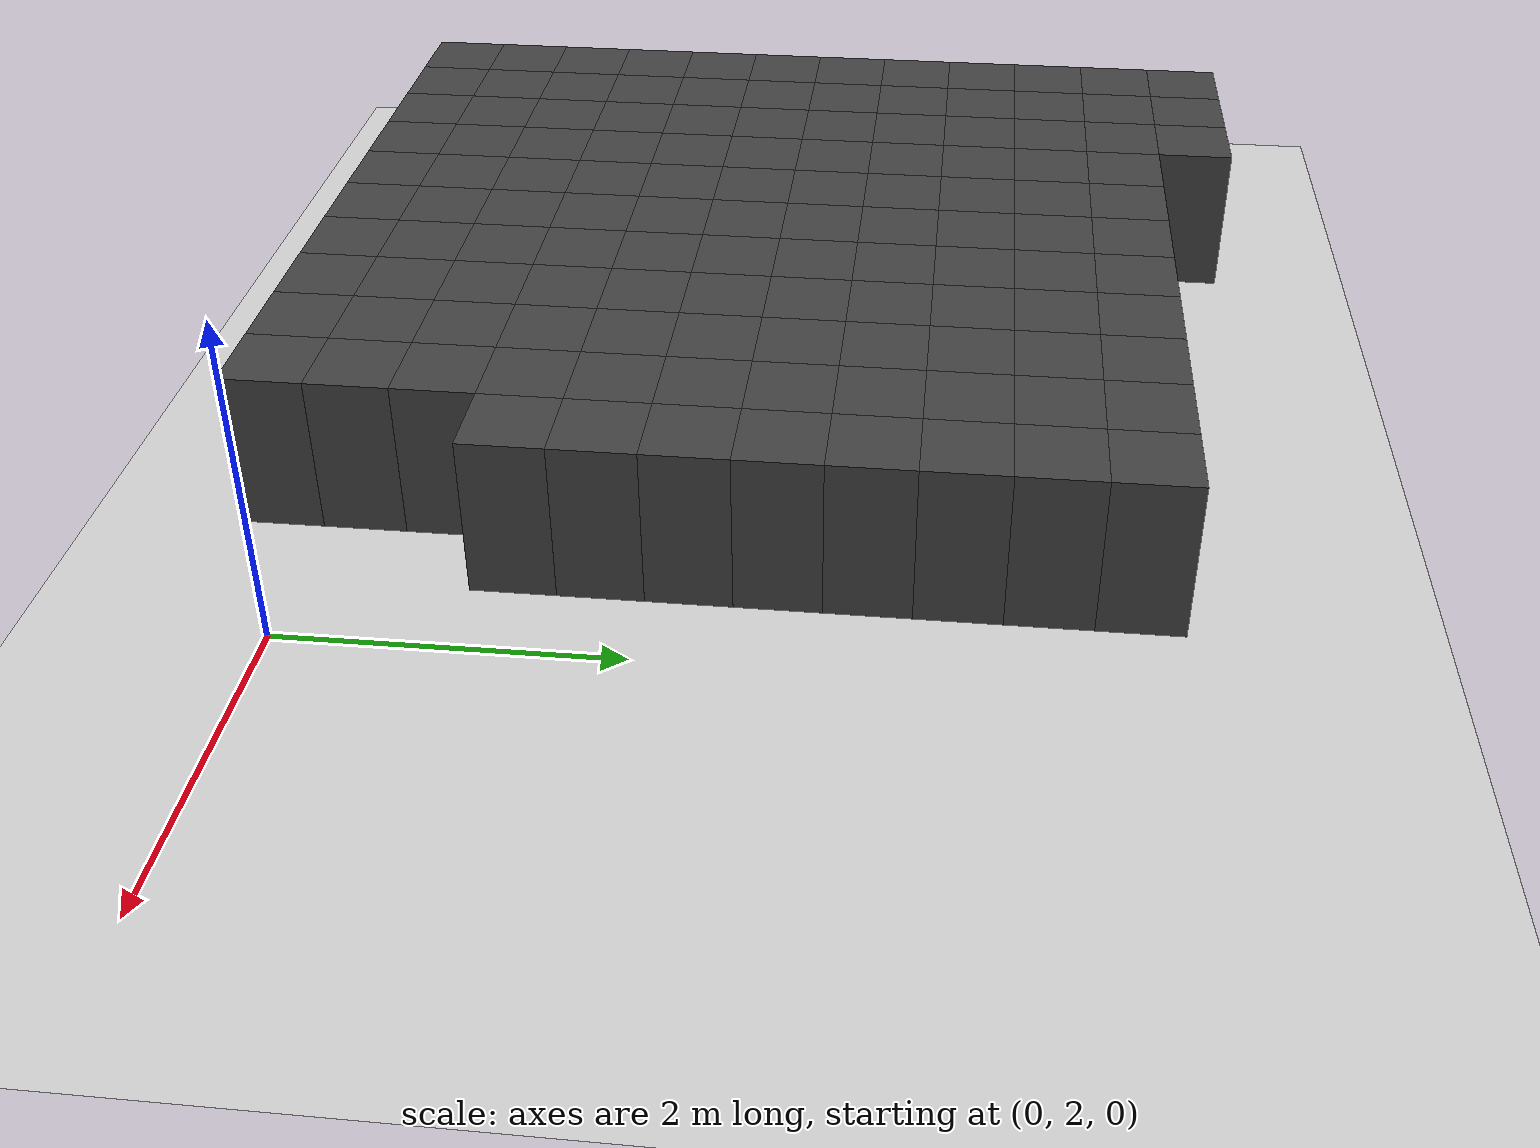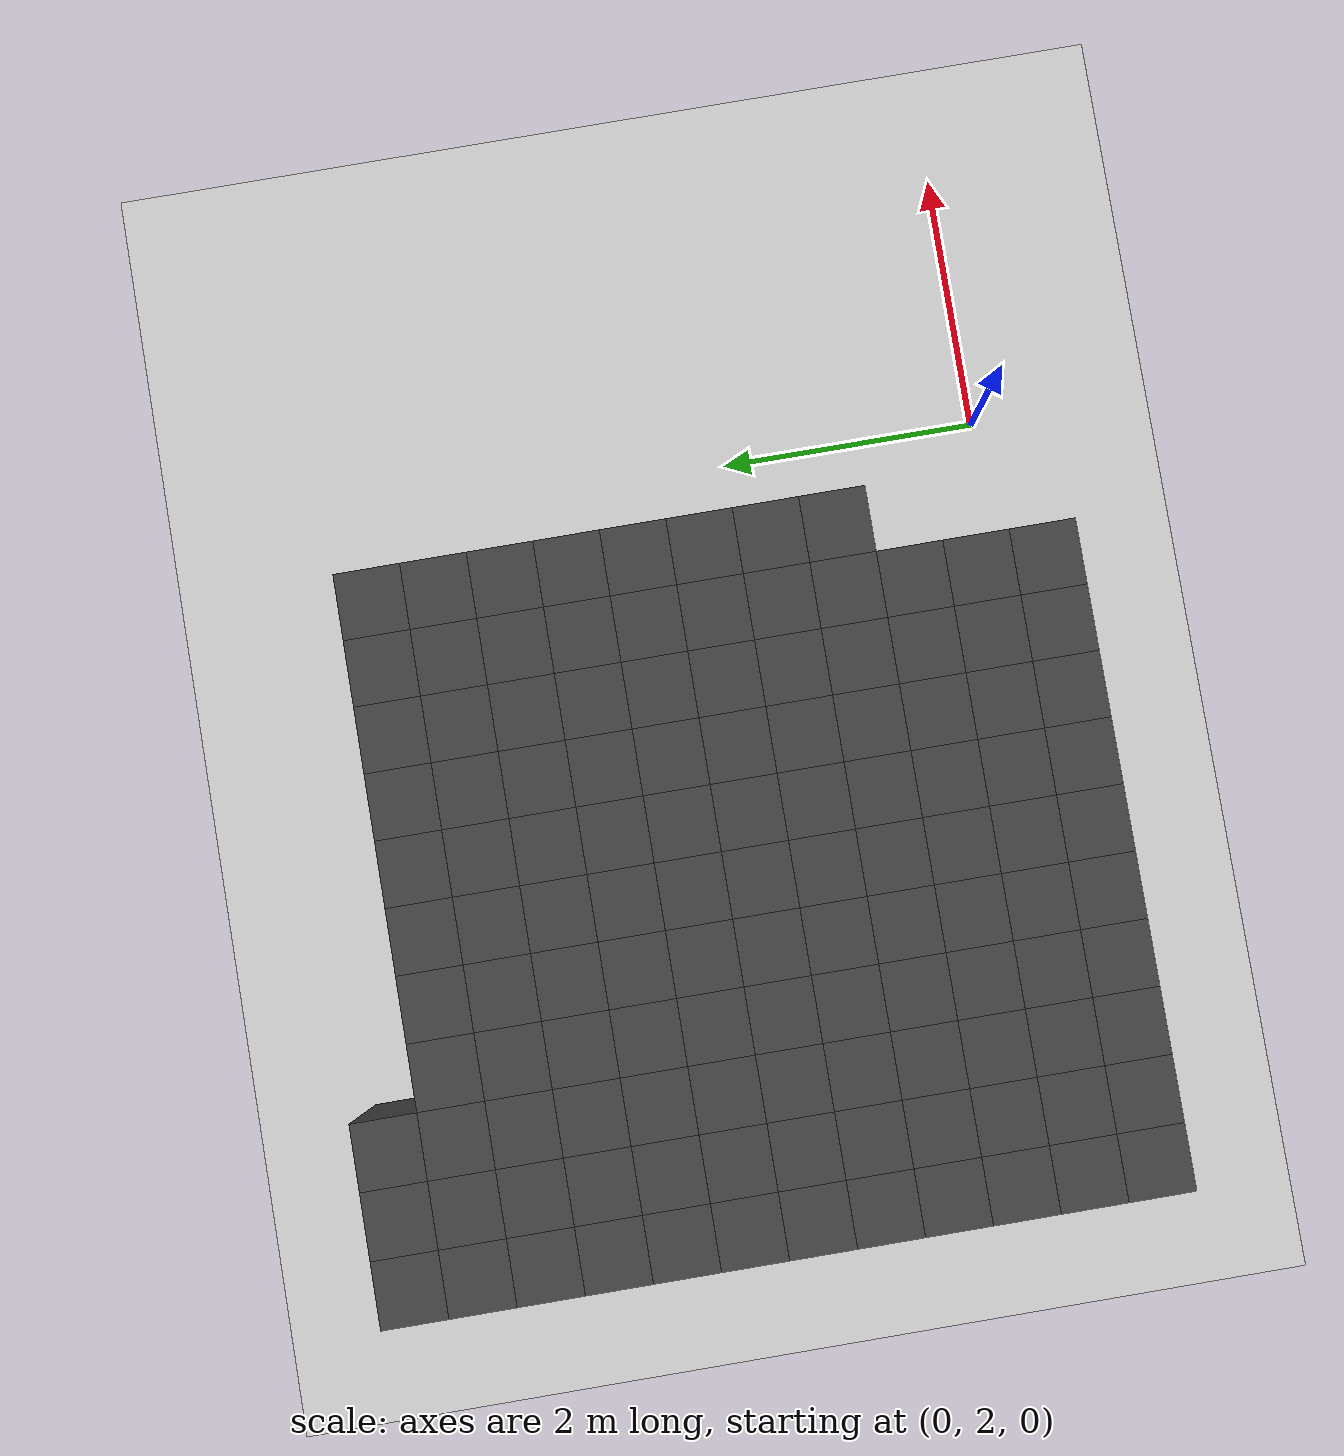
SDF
<sdf version="1.7">
 <world name="map_12885">
  <model name="ground_plane">
   <static>true</static>
   <link name="link">
    <collision name="collision">
     <geometry><plane><normal>0 0 1</normal><size>200 200</size></plane></geometry>
    </collision>
    <visual name="visual">
     <geometry><plane><normal>0 0 1</normal><size>200 200</size></plane></geometry>
     <material><ambient>0.8 0.8 0.8 1</ambient><diffuse>0.8 0.8 0.8 1</diffuse></material>
    </visual>
   </link>
  </model>
  <model name="maze_environment">
   <static>true</static>
   <link name="wall_480">
    <pose>-5.750 7.250 0.500 0 0 0</pose>
    <collision name="col"><geometry><box><size>0.5 0.5 1.0</size></box></geometry></collision>
    <visual name="vis">
     <geometry><box><size>0.5 0.5 1.0</size></box></geometry>
     <material><ambient>0.15 0.15 0.15 1</ambient><diffuse>0.25 0.25 0.25 1</diffuse></material>
    </visual>
   </link>
   <link name="wall_481">
    <pose>-5.250 7.250 0.500 0 0 0</pose>
    <collision name="col"><geometry><box><size>0.5 0.5 1.0</size></box></geometry></collision>
    <visual name="vis">
     <geometry><box><size>0.5 0.5 1.0</size></box></geometry>
     <material><ambient>0.15 0.15 0.15 1</ambient><diffuse>0.25 0.25 0.25 1</diffuse></material>
    </visual>
   </link>
   <link name="wall_482">
    <pose>-4.750 7.250 0.500 0 0 0</pose>
    <collision name="col"><geometry><box><size>0.5 0.5 1.0</size></box></geometry></collision>
    <visual name="vis">
     <geometry><box><size>0.5 0.5 1.0</size></box></geometry>
     <material><ambient>0.15 0.15 0.15 1</ambient><diffuse>0.25 0.25 0.25 1</diffuse></material>
    </visual>
   </link>
   <link name="wall_516">
    <pose>-5.750 6.750 0.500 0 0 0</pose>
    <collision name="col"><geometry><box><size>0.5 0.5 1.0</size></box></geometry></collision>
    <visual name="vis">
     <geometry><box><size>0.5 0.5 1.0</size></box></geometry>
     <material><ambient>0.15 0.15 0.15 1</ambient><diffuse>0.25 0.25 0.25 1</diffuse></material>
    </visual>
   </link>
   <link name="wall_517">
    <pose>-5.250 6.750 0.500 0 0 0</pose>
    <collision name="col"><geometry><box><size>0.5 0.5 1.0</size></box></geometry></collision>
    <visual name="vis">
     <geometry><box><size>0.5 0.5 1.0</size></box></geometry>
     <material><ambient>0.15 0.15 0.15 1</ambient><diffuse>0.25 0.25 0.25 1</diffuse></material>
    </visual>
   </link>
   <link name="wall_518">
    <pose>-4.750 6.750 0.500 0 0 0</pose>
    <collision name="col"><geometry><box><size>0.5 0.5 1.0</size></box></geometry></collision>
    <visual name="vis">
     <geometry><box><size>0.5 0.5 1.0</size></box></geometry>
     <material><ambient>0.15 0.15 0.15 1</ambient><diffuse>0.25 0.25 0.25 1</diffuse></material>
    </visual>
   </link>
   <link name="wall_519">
    <pose>-4.250 6.750 0.500 0 0 0</pose>
    <collision name="col"><geometry><box><size>0.5 0.5 1.0</size></box></geometry></collision>
    <visual name="vis">
     <geometry><box><size>0.5 0.5 1.0</size></box></geometry>
     <material><ambient>0.15 0.15 0.15 1</ambient><diffuse>0.25 0.25 0.25 1</diffuse></material>
    </visual>
   </link>
   <link name="wall_520">
    <pose>-3.750 6.750 0.500 0 0 0</pose>
    <collision name="col"><geometry><box><size>0.5 0.5 1.0</size></box></geometry></collision>
    <visual name="vis">
     <geometry><box><size>0.5 0.5 1.0</size></box></geometry>
     <material><ambient>0.15 0.15 0.15 1</ambient><diffuse>0.25 0.25 0.25 1</diffuse></material>
    </visual>
   </link>
   <link name="wall_521">
    <pose>-3.250 6.750 0.500 0 0 0</pose>
    <collision name="col"><geometry><box><size>0.5 0.5 1.0</size></box></geometry></collision>
    <visual name="vis">
     <geometry><box><size>0.5 0.5 1.0</size></box></geometry>
     <material><ambient>0.15 0.15 0.15 1</ambient><diffuse>0.25 0.25 0.25 1</diffuse></material>
    </visual>
   </link>
   <link name="wall_522">
    <pose>-2.750 6.750 0.500 0 0 0</pose>
    <collision name="col"><geometry><box><size>0.5 0.5 1.0</size></box></geometry></collision>
    <visual name="vis">
     <geometry><box><size>0.5 0.5 1.0</size></box></geometry>
     <material><ambient>0.15 0.15 0.15 1</ambient><diffuse>0.25 0.25 0.25 1</diffuse></material>
    </visual>
   </link>
   <link name="wall_523">
    <pose>-2.250 6.750 0.500 0 0 0</pose>
    <collision name="col"><geometry><box><size>0.5 0.5 1.0</size></box></geometry></collision>
    <visual name="vis">
     <geometry><box><size>0.5 0.5 1.0</size></box></geometry>
     <material><ambient>0.15 0.15 0.15 1</ambient><diffuse>0.25 0.25 0.25 1</diffuse></material>
    </visual>
   </link>
   <link name="wall_524">
    <pose>-1.750 6.750 0.500 0 0 0</pose>
    <collision name="col"><geometry><box><size>0.5 0.5 1.0</size></box></geometry></collision>
    <visual name="vis">
     <geometry><box><size>0.5 0.5 1.0</size></box></geometry>
     <material><ambient>0.15 0.15 0.15 1</ambient><diffuse>0.25 0.25 0.25 1</diffuse></material>
    </visual>
   </link>
   <link name="wall_525">
    <pose>-1.250 6.750 0.500 0 0 0</pose>
    <collision name="col"><geometry><box><size>0.5 0.5 1.0</size></box></geometry></collision>
    <visual name="vis">
     <geometry><box><size>0.5 0.5 1.0</size></box></geometry>
     <material><ambient>0.15 0.15 0.15 1</ambient><diffuse>0.25 0.25 0.25 1</diffuse></material>
    </visual>
   </link>
   <link name="wall_526">
    <pose>-0.750 6.750 0.500 0 0 0</pose>
    <collision name="col"><geometry><box><size>0.5 0.5 1.0</size></box></geometry></collision>
    <visual name="vis">
     <geometry><box><size>0.5 0.5 1.0</size></box></geometry>
     <material><ambient>0.15 0.15 0.15 1</ambient><diffuse>0.25 0.25 0.25 1</diffuse></material>
    </visual>
   </link>
   <link name="wall_550">
    <pose>-5.750 6.250 0.500 0 0 0</pose>
    <collision name="col"><geometry><box><size>0.5 0.5 1.0</size></box></geometry></collision>
    <visual name="vis">
     <geometry><box><size>0.5 0.5 1.0</size></box></geometry>
     <material><ambient>0.15 0.15 0.15 1</ambient><diffuse>0.25 0.25 0.25 1</diffuse></material>
    </visual>
   </link>
   <link name="wall_551">
    <pose>-5.250 6.250 0.500 0 0 0</pose>
    <collision name="col"><geometry><box><size>0.5 0.5 1.0</size></box></geometry></collision>
    <visual name="vis">
     <geometry><box><size>0.5 0.5 1.0</size></box></geometry>
     <material><ambient>0.15 0.15 0.15 1</ambient><diffuse>0.25 0.25 0.25 1</diffuse></material>
    </visual>
   </link>
   <link name="wall_552">
    <pose>-4.750 6.250 0.500 0 0 0</pose>
    <collision name="col"><geometry><box><size>0.5 0.5 1.0</size></box></geometry></collision>
    <visual name="vis">
     <geometry><box><size>0.5 0.5 1.0</size></box></geometry>
     <material><ambient>0.15 0.15 0.15 1</ambient><diffuse>0.25 0.25 0.25 1</diffuse></material>
    </visual>
   </link>
   <link name="wall_553">
    <pose>-4.250 6.250 0.500 0 0 0</pose>
    <collision name="col"><geometry><box><size>0.5 0.5 1.0</size></box></geometry></collision>
    <visual name="vis">
     <geometry><box><size>0.5 0.5 1.0</size></box></geometry>
     <material><ambient>0.15 0.15 0.15 1</ambient><diffuse>0.25 0.25 0.25 1</diffuse></material>
    </visual>
   </link>
   <link name="wall_554">
    <pose>-3.750 6.250 0.500 0 0 0</pose>
    <collision name="col"><geometry><box><size>0.5 0.5 1.0</size></box></geometry></collision>
    <visual name="vis">
     <geometry><box><size>0.5 0.5 1.0</size></box></geometry>
     <material><ambient>0.15 0.15 0.15 1</ambient><diffuse>0.25 0.25 0.25 1</diffuse></material>
    </visual>
   </link>
   <link name="wall_555">
    <pose>-3.250 6.250 0.500 0 0 0</pose>
    <collision name="col"><geometry><box><size>0.5 0.5 1.0</size></box></geometry></collision>
    <visual name="vis">
     <geometry><box><size>0.5 0.5 1.0</size></box></geometry>
     <material><ambient>0.15 0.15 0.15 1</ambient><diffuse>0.25 0.25 0.25 1</diffuse></material>
    </visual>
   </link>
   <link name="wall_556">
    <pose>-2.750 6.250 0.500 0 0 0</pose>
    <collision name="col"><geometry><box><size>0.5 0.5 1.0</size></box></geometry></collision>
    <visual name="vis">
     <geometry><box><size>0.5 0.5 1.0</size></box></geometry>
     <material><ambient>0.15 0.15 0.15 1</ambient><diffuse>0.25 0.25 0.25 1</diffuse></material>
    </visual>
   </link>
   <link name="wall_557">
    <pose>-2.250 6.250 0.500 0 0 0</pose>
    <collision name="col"><geometry><box><size>0.5 0.5 1.0</size></box></geometry></collision>
    <visual name="vis">
     <geometry><box><size>0.5 0.5 1.0</size></box></geometry>
     <material><ambient>0.15 0.15 0.15 1</ambient><diffuse>0.25 0.25 0.25 1</diffuse></material>
    </visual>
   </link>
   <link name="wall_558">
    <pose>-1.750 6.250 0.500 0 0 0</pose>
    <collision name="col"><geometry><box><size>0.5 0.5 1.0</size></box></geometry></collision>
    <visual name="vis">
     <geometry><box><size>0.5 0.5 1.0</size></box></geometry>
     <material><ambient>0.15 0.15 0.15 1</ambient><diffuse>0.25 0.25 0.25 1</diffuse></material>
    </visual>
   </link>
   <link name="wall_559">
    <pose>-1.250 6.250 0.500 0 0 0</pose>
    <collision name="col"><geometry><box><size>0.5 0.5 1.0</size></box></geometry></collision>
    <visual name="vis">
     <geometry><box><size>0.5 0.5 1.0</size></box></geometry>
     <material><ambient>0.15 0.15 0.15 1</ambient><diffuse>0.25 0.25 0.25 1</diffuse></material>
    </visual>
   </link>
   <link name="wall_560">
    <pose>-0.750 6.250 0.500 0 0 0</pose>
    <collision name="col"><geometry><box><size>0.5 0.5 1.0</size></box></geometry></collision>
    <visual name="vis">
     <geometry><box><size>0.5 0.5 1.0</size></box></geometry>
     <material><ambient>0.15 0.15 0.15 1</ambient><diffuse>0.25 0.25 0.25 1</diffuse></material>
    </visual>
   </link>
   <link name="wall_582">
    <pose>-5.750 5.750 0.500 0 0 0</pose>
    <collision name="col"><geometry><box><size>0.5 0.5 1.0</size></box></geometry></collision>
    <visual name="vis">
     <geometry><box><size>0.5 0.5 1.0</size></box></geometry>
     <material><ambient>0.15 0.15 0.15 1</ambient><diffuse>0.25 0.25 0.25 1</diffuse></material>
    </visual>
   </link>
   <link name="wall_583">
    <pose>-5.250 5.750 0.500 0 0 0</pose>
    <collision name="col"><geometry><box><size>0.5 0.5 1.0</size></box></geometry></collision>
    <visual name="vis">
     <geometry><box><size>0.5 0.5 1.0</size></box></geometry>
     <material><ambient>0.15 0.15 0.15 1</ambient><diffuse>0.25 0.25 0.25 1</diffuse></material>
    </visual>
   </link>
   <link name="wall_584">
    <pose>-4.750 5.750 0.500 0 0 0</pose>
    <collision name="col"><geometry><box><size>0.5 0.5 1.0</size></box></geometry></collision>
    <visual name="vis">
     <geometry><box><size>0.5 0.5 1.0</size></box></geometry>
     <material><ambient>0.15 0.15 0.15 1</ambient><diffuse>0.25 0.25 0.25 1</diffuse></material>
    </visual>
   </link>
   <link name="wall_585">
    <pose>-4.250 5.750 0.500 0 0 0</pose>
    <collision name="col"><geometry><box><size>0.5 0.5 1.0</size></box></geometry></collision>
    <visual name="vis">
     <geometry><box><size>0.5 0.5 1.0</size></box></geometry>
     <material><ambient>0.15 0.15 0.15 1</ambient><diffuse>0.25 0.25 0.25 1</diffuse></material>
    </visual>
   </link>
   <link name="wall_586">
    <pose>-3.750 5.750 0.500 0 0 0</pose>
    <collision name="col"><geometry><box><size>0.5 0.5 1.0</size></box></geometry></collision>
    <visual name="vis">
     <geometry><box><size>0.5 0.5 1.0</size></box></geometry>
     <material><ambient>0.15 0.15 0.15 1</ambient><diffuse>0.25 0.25 0.25 1</diffuse></material>
    </visual>
   </link>
   <link name="wall_587">
    <pose>-3.250 5.750 0.500 0 0 0</pose>
    <collision name="col"><geometry><box><size>0.5 0.5 1.0</size></box></geometry></collision>
    <visual name="vis">
     <geometry><box><size>0.5 0.5 1.0</size></box></geometry>
     <material><ambient>0.15 0.15 0.15 1</ambient><diffuse>0.25 0.25 0.25 1</diffuse></material>
    </visual>
   </link>
   <link name="wall_588">
    <pose>-2.750 5.750 0.500 0 0 0</pose>
    <collision name="col"><geometry><box><size>0.5 0.5 1.0</size></box></geometry></collision>
    <visual name="vis">
     <geometry><box><size>0.5 0.5 1.0</size></box></geometry>
     <material><ambient>0.15 0.15 0.15 1</ambient><diffuse>0.25 0.25 0.25 1</diffuse></material>
    </visual>
   </link>
   <link name="wall_589">
    <pose>-2.250 5.750 0.500 0 0 0</pose>
    <collision name="col"><geometry><box><size>0.5 0.5 1.0</size></box></geometry></collision>
    <visual name="vis">
     <geometry><box><size>0.5 0.5 1.0</size></box></geometry>
     <material><ambient>0.15 0.15 0.15 1</ambient><diffuse>0.25 0.25 0.25 1</diffuse></material>
    </visual>
   </link>
   <link name="wall_590">
    <pose>-1.750 5.750 0.500 0 0 0</pose>
    <collision name="col"><geometry><box><size>0.5 0.5 1.0</size></box></geometry></collision>
    <visual name="vis">
     <geometry><box><size>0.5 0.5 1.0</size></box></geometry>
     <material><ambient>0.15 0.15 0.15 1</ambient><diffuse>0.25 0.25 0.25 1</diffuse></material>
    </visual>
   </link>
   <link name="wall_591">
    <pose>-1.250 5.750 0.500 0 0 0</pose>
    <collision name="col"><geometry><box><size>0.5 0.5 1.0</size></box></geometry></collision>
    <visual name="vis">
     <geometry><box><size>0.5 0.5 1.0</size></box></geometry>
     <material><ambient>0.15 0.15 0.15 1</ambient><diffuse>0.25 0.25 0.25 1</diffuse></material>
    </visual>
   </link>
   <link name="wall_592">
    <pose>-0.750 5.750 0.500 0 0 0</pose>
    <collision name="col"><geometry><box><size>0.5 0.5 1.0</size></box></geometry></collision>
    <visual name="vis">
     <geometry><box><size>0.5 0.5 1.0</size></box></geometry>
     <material><ambient>0.15 0.15 0.15 1</ambient><diffuse>0.25 0.25 0.25 1</diffuse></material>
    </visual>
   </link>
   <link name="wall_614">
    <pose>-5.750 5.250 0.500 0 0 0</pose>
    <collision name="col"><geometry><box><size>0.5 0.5 1.0</size></box></geometry></collision>
    <visual name="vis">
     <geometry><box><size>0.5 0.5 1.0</size></box></geometry>
     <material><ambient>0.15 0.15 0.15 1</ambient><diffuse>0.25 0.25 0.25 1</diffuse></material>
    </visual>
   </link>
   <link name="wall_615">
    <pose>-5.250 5.250 0.500 0 0 0</pose>
    <collision name="col"><geometry><box><size>0.5 0.5 1.0</size></box></geometry></collision>
    <visual name="vis">
     <geometry><box><size>0.5 0.5 1.0</size></box></geometry>
     <material><ambient>0.15 0.15 0.15 1</ambient><diffuse>0.25 0.25 0.25 1</diffuse></material>
    </visual>
   </link>
   <link name="wall_616">
    <pose>-4.750 5.250 0.500 0 0 0</pose>
    <collision name="col"><geometry><box><size>0.5 0.5 1.0</size></box></geometry></collision>
    <visual name="vis">
     <geometry><box><size>0.5 0.5 1.0</size></box></geometry>
     <material><ambient>0.15 0.15 0.15 1</ambient><diffuse>0.25 0.25 0.25 1</diffuse></material>
    </visual>
   </link>
   <link name="wall_617">
    <pose>-4.250 5.250 0.500 0 0 0</pose>
    <collision name="col"><geometry><box><size>0.5 0.5 1.0</size></box></geometry></collision>
    <visual name="vis">
     <geometry><box><size>0.5 0.5 1.0</size></box></geometry>
     <material><ambient>0.15 0.15 0.15 1</ambient><diffuse>0.25 0.25 0.25 1</diffuse></material>
    </visual>
   </link>
   <link name="wall_618">
    <pose>-3.750 5.250 0.500 0 0 0</pose>
    <collision name="col"><geometry><box><size>0.5 0.5 1.0</size></box></geometry></collision>
    <visual name="vis">
     <geometry><box><size>0.5 0.5 1.0</size></box></geometry>
     <material><ambient>0.15 0.15 0.15 1</ambient><diffuse>0.25 0.25 0.25 1</diffuse></material>
    </visual>
   </link>
   <link name="wall_619">
    <pose>-3.250 5.250 0.500 0 0 0</pose>
    <collision name="col"><geometry><box><size>0.5 0.5 1.0</size></box></geometry></collision>
    <visual name="vis">
     <geometry><box><size>0.5 0.5 1.0</size></box></geometry>
     <material><ambient>0.15 0.15 0.15 1</ambient><diffuse>0.25 0.25 0.25 1</diffuse></material>
    </visual>
   </link>
   <link name="wall_620">
    <pose>-2.750 5.250 0.500 0 0 0</pose>
    <collision name="col"><geometry><box><size>0.5 0.5 1.0</size></box></geometry></collision>
    <visual name="vis">
     <geometry><box><size>0.5 0.5 1.0</size></box></geometry>
     <material><ambient>0.15 0.15 0.15 1</ambient><diffuse>0.25 0.25 0.25 1</diffuse></material>
    </visual>
   </link>
   <link name="wall_621">
    <pose>-2.250 5.250 0.500 0 0 0</pose>
    <collision name="col"><geometry><box><size>0.5 0.5 1.0</size></box></geometry></collision>
    <visual name="vis">
     <geometry><box><size>0.5 0.5 1.0</size></box></geometry>
     <material><ambient>0.15 0.15 0.15 1</ambient><diffuse>0.25 0.25 0.25 1</diffuse></material>
    </visual>
   </link>
   <link name="wall_622">
    <pose>-1.750 5.250 0.500 0 0 0</pose>
    <collision name="col"><geometry><box><size>0.5 0.5 1.0</size></box></geometry></collision>
    <visual name="vis">
     <geometry><box><size>0.5 0.5 1.0</size></box></geometry>
     <material><ambient>0.15 0.15 0.15 1</ambient><diffuse>0.25 0.25 0.25 1</diffuse></material>
    </visual>
   </link>
   <link name="wall_623">
    <pose>-1.250 5.250 0.500 0 0 0</pose>
    <collision name="col"><geometry><box><size>0.5 0.5 1.0</size></box></geometry></collision>
    <visual name="vis">
     <geometry><box><size>0.5 0.5 1.0</size></box></geometry>
     <material><ambient>0.15 0.15 0.15 1</ambient><diffuse>0.25 0.25 0.25 1</diffuse></material>
    </visual>
   </link>
   <link name="wall_624">
    <pose>-0.750 5.250 0.500 0 0 0</pose>
    <collision name="col"><geometry><box><size>0.5 0.5 1.0</size></box></geometry></collision>
    <visual name="vis">
     <geometry><box><size>0.5 0.5 1.0</size></box></geometry>
     <material><ambient>0.15 0.15 0.15 1</ambient><diffuse>0.25 0.25 0.25 1</diffuse></material>
    </visual>
   </link>
   <link name="wall_655">
    <pose>-5.750 4.750 0.500 0 0 0</pose>
    <collision name="col"><geometry><box><size>0.5 0.5 1.0</size></box></geometry></collision>
    <visual name="vis">
     <geometry><box><size>0.5 0.5 1.0</size></box></geometry>
     <material><ambient>0.15 0.15 0.15 1</ambient><diffuse>0.25 0.25 0.25 1</diffuse></material>
    </visual>
   </link>
   <link name="wall_656">
    <pose>-5.250 4.750 0.500 0 0 0</pose>
    <collision name="col"><geometry><box><size>0.5 0.5 1.0</size></box></geometry></collision>
    <visual name="vis">
     <geometry><box><size>0.5 0.5 1.0</size></box></geometry>
     <material><ambient>0.15 0.15 0.15 1</ambient><diffuse>0.25 0.25 0.25 1</diffuse></material>
    </visual>
   </link>
   <link name="wall_657">
    <pose>-4.750 4.750 0.500 0 0 0</pose>
    <collision name="col"><geometry><box><size>0.5 0.5 1.0</size></box></geometry></collision>
    <visual name="vis">
     <geometry><box><size>0.5 0.5 1.0</size></box></geometry>
     <material><ambient>0.15 0.15 0.15 1</ambient><diffuse>0.25 0.25 0.25 1</diffuse></material>
    </visual>
   </link>
   <link name="wall_658">
    <pose>-4.250 4.750 0.500 0 0 0</pose>
    <collision name="col"><geometry><box><size>0.5 0.5 1.0</size></box></geometry></collision>
    <visual name="vis">
     <geometry><box><size>0.5 0.5 1.0</size></box></geometry>
     <material><ambient>0.15 0.15 0.15 1</ambient><diffuse>0.25 0.25 0.25 1</diffuse></material>
    </visual>
   </link>
   <link name="wall_659">
    <pose>-3.750 4.750 0.500 0 0 0</pose>
    <collision name="col"><geometry><box><size>0.5 0.5 1.0</size></box></geometry></collision>
    <visual name="vis">
     <geometry><box><size>0.5 0.5 1.0</size></box></geometry>
     <material><ambient>0.15 0.15 0.15 1</ambient><diffuse>0.25 0.25 0.25 1</diffuse></material>
    </visual>
   </link>
   <link name="wall_660">
    <pose>-3.250 4.750 0.500 0 0 0</pose>
    <collision name="col"><geometry><box><size>0.5 0.5 1.0</size></box></geometry></collision>
    <visual name="vis">
     <geometry><box><size>0.5 0.5 1.0</size></box></geometry>
     <material><ambient>0.15 0.15 0.15 1</ambient><diffuse>0.25 0.25 0.25 1</diffuse></material>
    </visual>
   </link>
   <link name="wall_661">
    <pose>-2.750 4.750 0.500 0 0 0</pose>
    <collision name="col"><geometry><box><size>0.5 0.5 1.0</size></box></geometry></collision>
    <visual name="vis">
     <geometry><box><size>0.5 0.5 1.0</size></box></geometry>
     <material><ambient>0.15 0.15 0.15 1</ambient><diffuse>0.25 0.25 0.25 1</diffuse></material>
    </visual>
   </link>
   <link name="wall_662">
    <pose>-2.250 4.750 0.500 0 0 0</pose>
    <collision name="col"><geometry><box><size>0.5 0.5 1.0</size></box></geometry></collision>
    <visual name="vis">
     <geometry><box><size>0.5 0.5 1.0</size></box></geometry>
     <material><ambient>0.15 0.15 0.15 1</ambient><diffuse>0.25 0.25 0.25 1</diffuse></material>
    </visual>
   </link>
   <link name="wall_663">
    <pose>-1.750 4.750 0.500 0 0 0</pose>
    <collision name="col"><geometry><box><size>0.5 0.5 1.0</size></box></geometry></collision>
    <visual name="vis">
     <geometry><box><size>0.5 0.5 1.0</size></box></geometry>
     <material><ambient>0.15 0.15 0.15 1</ambient><diffuse>0.25 0.25 0.25 1</diffuse></material>
    </visual>
   </link>
   <link name="wall_664">
    <pose>-1.250 4.750 0.500 0 0 0</pose>
    <collision name="col"><geometry><box><size>0.5 0.5 1.0</size></box></geometry></collision>
    <visual name="vis">
     <geometry><box><size>0.5 0.5 1.0</size></box></geometry>
     <material><ambient>0.15 0.15 0.15 1</ambient><diffuse>0.25 0.25 0.25 1</diffuse></material>
    </visual>
   </link>
   <link name="wall_665">
    <pose>-0.750 4.750 0.500 0 0 0</pose>
    <collision name="col"><geometry><box><size>0.5 0.5 1.0</size></box></geometry></collision>
    <visual name="vis">
     <geometry><box><size>0.5 0.5 1.0</size></box></geometry>
     <material><ambient>0.15 0.15 0.15 1</ambient><diffuse>0.25 0.25 0.25 1</diffuse></material>
    </visual>
   </link>
   <link name="wall_696">
    <pose>-5.750 4.250 0.500 0 0 0</pose>
    <collision name="col"><geometry><box><size>0.5 0.5 1.0</size></box></geometry></collision>
    <visual name="vis">
     <geometry><box><size>0.5 0.5 1.0</size></box></geometry>
     <material><ambient>0.15 0.15 0.15 1</ambient><diffuse>0.25 0.25 0.25 1</diffuse></material>
    </visual>
   </link>
   <link name="wall_697">
    <pose>-5.250 4.250 0.500 0 0 0</pose>
    <collision name="col"><geometry><box><size>0.5 0.5 1.0</size></box></geometry></collision>
    <visual name="vis">
     <geometry><box><size>0.5 0.5 1.0</size></box></geometry>
     <material><ambient>0.15 0.15 0.15 1</ambient><diffuse>0.25 0.25 0.25 1</diffuse></material>
    </visual>
   </link>
   <link name="wall_698">
    <pose>-4.750 4.250 0.500 0 0 0</pose>
    <collision name="col"><geometry><box><size>0.5 0.5 1.0</size></box></geometry></collision>
    <visual name="vis">
     <geometry><box><size>0.5 0.5 1.0</size></box></geometry>
     <material><ambient>0.15 0.15 0.15 1</ambient><diffuse>0.25 0.25 0.25 1</diffuse></material>
    </visual>
   </link>
   <link name="wall_699">
    <pose>-4.250 4.250 0.500 0 0 0</pose>
    <collision name="col"><geometry><box><size>0.5 0.5 1.0</size></box></geometry></collision>
    <visual name="vis">
     <geometry><box><size>0.5 0.5 1.0</size></box></geometry>
     <material><ambient>0.15 0.15 0.15 1</ambient><diffuse>0.25 0.25 0.25 1</diffuse></material>
    </visual>
   </link>
   <link name="wall_700">
    <pose>-3.750 4.250 0.500 0 0 0</pose>
    <collision name="col"><geometry><box><size>0.5 0.5 1.0</size></box></geometry></collision>
    <visual name="vis">
     <geometry><box><size>0.5 0.5 1.0</size></box></geometry>
     <material><ambient>0.15 0.15 0.15 1</ambient><diffuse>0.25 0.25 0.25 1</diffuse></material>
    </visual>
   </link>
   <link name="wall_701">
    <pose>-3.250 4.250 0.500 0 0 0</pose>
    <collision name="col"><geometry><box><size>0.5 0.5 1.0</size></box></geometry></collision>
    <visual name="vis">
     <geometry><box><size>0.5 0.5 1.0</size></box></geometry>
     <material><ambient>0.15 0.15 0.15 1</ambient><diffuse>0.25 0.25 0.25 1</diffuse></material>
    </visual>
   </link>
   <link name="wall_702">
    <pose>-2.750 4.250 0.500 0 0 0</pose>
    <collision name="col"><geometry><box><size>0.5 0.5 1.0</size></box></geometry></collision>
    <visual name="vis">
     <geometry><box><size>0.5 0.5 1.0</size></box></geometry>
     <material><ambient>0.15 0.15 0.15 1</ambient><diffuse>0.25 0.25 0.25 1</diffuse></material>
    </visual>
   </link>
   <link name="wall_703">
    <pose>-2.250 4.250 0.500 0 0 0</pose>
    <collision name="col"><geometry><box><size>0.5 0.5 1.0</size></box></geometry></collision>
    <visual name="vis">
     <geometry><box><size>0.5 0.5 1.0</size></box></geometry>
     <material><ambient>0.15 0.15 0.15 1</ambient><diffuse>0.25 0.25 0.25 1</diffuse></material>
    </visual>
   </link>
   <link name="wall_704">
    <pose>-1.750 4.250 0.500 0 0 0</pose>
    <collision name="col"><geometry><box><size>0.5 0.5 1.0</size></box></geometry></collision>
    <visual name="vis">
     <geometry><box><size>0.5 0.5 1.0</size></box></geometry>
     <material><ambient>0.15 0.15 0.15 1</ambient><diffuse>0.25 0.25 0.25 1</diffuse></material>
    </visual>
   </link>
   <link name="wall_705">
    <pose>-1.250 4.250 0.500 0 0 0</pose>
    <collision name="col"><geometry><box><size>0.5 0.5 1.0</size></box></geometry></collision>
    <visual name="vis">
     <geometry><box><size>0.5 0.5 1.0</size></box></geometry>
     <material><ambient>0.15 0.15 0.15 1</ambient><diffuse>0.25 0.25 0.25 1</diffuse></material>
    </visual>
   </link>
   <link name="wall_706">
    <pose>-0.750 4.250 0.500 0 0 0</pose>
    <collision name="col"><geometry><box><size>0.5 0.5 1.0</size></box></geometry></collision>
    <visual name="vis">
     <geometry><box><size>0.5 0.5 1.0</size></box></geometry>
     <material><ambient>0.15 0.15 0.15 1</ambient><diffuse>0.25 0.25 0.25 1</diffuse></material>
    </visual>
   </link>
   <link name="wall_737">
    <pose>-5.750 3.750 0.500 0 0 0</pose>
    <collision name="col"><geometry><box><size>0.5 0.5 1.0</size></box></geometry></collision>
    <visual name="vis">
     <geometry><box><size>0.5 0.5 1.0</size></box></geometry>
     <material><ambient>0.15 0.15 0.15 1</ambient><diffuse>0.25 0.25 0.25 1</diffuse></material>
    </visual>
   </link>
   <link name="wall_738">
    <pose>-5.250 3.750 0.500 0 0 0</pose>
    <collision name="col"><geometry><box><size>0.5 0.5 1.0</size></box></geometry></collision>
    <visual name="vis">
     <geometry><box><size>0.5 0.5 1.0</size></box></geometry>
     <material><ambient>0.15 0.15 0.15 1</ambient><diffuse>0.25 0.25 0.25 1</diffuse></material>
    </visual>
   </link>
   <link name="wall_739">
    <pose>-4.750 3.750 0.500 0 0 0</pose>
    <collision name="col"><geometry><box><size>0.5 0.5 1.0</size></box></geometry></collision>
    <visual name="vis">
     <geometry><box><size>0.5 0.5 1.0</size></box></geometry>
     <material><ambient>0.15 0.15 0.15 1</ambient><diffuse>0.25 0.25 0.25 1</diffuse></material>
    </visual>
   </link>
   <link name="wall_740">
    <pose>-4.250 3.750 0.500 0 0 0</pose>
    <collision name="col"><geometry><box><size>0.5 0.5 1.0</size></box></geometry></collision>
    <visual name="vis">
     <geometry><box><size>0.5 0.5 1.0</size></box></geometry>
     <material><ambient>0.15 0.15 0.15 1</ambient><diffuse>0.25 0.25 0.25 1</diffuse></material>
    </visual>
   </link>
   <link name="wall_741">
    <pose>-3.750 3.750 0.500 0 0 0</pose>
    <collision name="col"><geometry><box><size>0.5 0.5 1.0</size></box></geometry></collision>
    <visual name="vis">
     <geometry><box><size>0.5 0.5 1.0</size></box></geometry>
     <material><ambient>0.15 0.15 0.15 1</ambient><diffuse>0.25 0.25 0.25 1</diffuse></material>
    </visual>
   </link>
   <link name="wall_742">
    <pose>-3.250 3.750 0.500 0 0 0</pose>
    <collision name="col"><geometry><box><size>0.5 0.5 1.0</size></box></geometry></collision>
    <visual name="vis">
     <geometry><box><size>0.5 0.5 1.0</size></box></geometry>
     <material><ambient>0.15 0.15 0.15 1</ambient><diffuse>0.25 0.25 0.25 1</diffuse></material>
    </visual>
   </link>
   <link name="wall_743">
    <pose>-2.750 3.750 0.500 0 0 0</pose>
    <collision name="col"><geometry><box><size>0.5 0.5 1.0</size></box></geometry></collision>
    <visual name="vis">
     <geometry><box><size>0.5 0.5 1.0</size></box></geometry>
     <material><ambient>0.15 0.15 0.15 1</ambient><diffuse>0.25 0.25 0.25 1</diffuse></material>
    </visual>
   </link>
   <link name="wall_744">
    <pose>-2.250 3.750 0.500 0 0 0</pose>
    <collision name="col"><geometry><box><size>0.5 0.5 1.0</size></box></geometry></collision>
    <visual name="vis">
     <geometry><box><size>0.5 0.5 1.0</size></box></geometry>
     <material><ambient>0.15 0.15 0.15 1</ambient><diffuse>0.25 0.25 0.25 1</diffuse></material>
    </visual>
   </link>
   <link name="wall_745">
    <pose>-1.750 3.750 0.500 0 0 0</pose>
    <collision name="col"><geometry><box><size>0.5 0.5 1.0</size></box></geometry></collision>
    <visual name="vis">
     <geometry><box><size>0.5 0.5 1.0</size></box></geometry>
     <material><ambient>0.15 0.15 0.15 1</ambient><diffuse>0.25 0.25 0.25 1</diffuse></material>
    </visual>
   </link>
   <link name="wall_746">
    <pose>-1.250 3.750 0.500 0 0 0</pose>
    <collision name="col"><geometry><box><size>0.5 0.5 1.0</size></box></geometry></collision>
    <visual name="vis">
     <geometry><box><size>0.5 0.5 1.0</size></box></geometry>
     <material><ambient>0.15 0.15 0.15 1</ambient><diffuse>0.25 0.25 0.25 1</diffuse></material>
    </visual>
   </link>
   <link name="wall_747">
    <pose>-0.750 3.750 0.500 0 0 0</pose>
    <collision name="col"><geometry><box><size>0.5 0.5 1.0</size></box></geometry></collision>
    <visual name="vis">
     <geometry><box><size>0.5 0.5 1.0</size></box></geometry>
     <material><ambient>0.15 0.15 0.15 1</ambient><diffuse>0.25 0.25 0.25 1</diffuse></material>
    </visual>
   </link>
   <link name="wall_778">
    <pose>-5.750 3.250 0.500 0 0 0</pose>
    <collision name="col"><geometry><box><size>0.5 0.5 1.0</size></box></geometry></collision>
    <visual name="vis">
     <geometry><box><size>0.5 0.5 1.0</size></box></geometry>
     <material><ambient>0.15 0.15 0.15 1</ambient><diffuse>0.25 0.25 0.25 1</diffuse></material>
    </visual>
   </link>
   <link name="wall_779">
    <pose>-5.250 3.250 0.500 0 0 0</pose>
    <collision name="col"><geometry><box><size>0.5 0.5 1.0</size></box></geometry></collision>
    <visual name="vis">
     <geometry><box><size>0.5 0.5 1.0</size></box></geometry>
     <material><ambient>0.15 0.15 0.15 1</ambient><diffuse>0.25 0.25 0.25 1</diffuse></material>
    </visual>
   </link>
   <link name="wall_780">
    <pose>-4.750 3.250 0.500 0 0 0</pose>
    <collision name="col"><geometry><box><size>0.5 0.5 1.0</size></box></geometry></collision>
    <visual name="vis">
     <geometry><box><size>0.5 0.5 1.0</size></box></geometry>
     <material><ambient>0.15 0.15 0.15 1</ambient><diffuse>0.25 0.25 0.25 1</diffuse></material>
    </visual>
   </link>
   <link name="wall_781">
    <pose>-4.250 3.250 0.500 0 0 0</pose>
    <collision name="col"><geometry><box><size>0.5 0.5 1.0</size></box></geometry></collision>
    <visual name="vis">
     <geometry><box><size>0.5 0.5 1.0</size></box></geometry>
     <material><ambient>0.15 0.15 0.15 1</ambient><diffuse>0.25 0.25 0.25 1</diffuse></material>
    </visual>
   </link>
   <link name="wall_782">
    <pose>-3.750 3.250 0.500 0 0 0</pose>
    <collision name="col"><geometry><box><size>0.5 0.5 1.0</size></box></geometry></collision>
    <visual name="vis">
     <geometry><box><size>0.5 0.5 1.0</size></box></geometry>
     <material><ambient>0.15 0.15 0.15 1</ambient><diffuse>0.25 0.25 0.25 1</diffuse></material>
    </visual>
   </link>
   <link name="wall_783">
    <pose>-3.250 3.250 0.500 0 0 0</pose>
    <collision name="col"><geometry><box><size>0.5 0.5 1.0</size></box></geometry></collision>
    <visual name="vis">
     <geometry><box><size>0.5 0.5 1.0</size></box></geometry>
     <material><ambient>0.15 0.15 0.15 1</ambient><diffuse>0.25 0.25 0.25 1</diffuse></material>
    </visual>
   </link>
   <link name="wall_784">
    <pose>-2.750 3.250 0.500 0 0 0</pose>
    <collision name="col"><geometry><box><size>0.5 0.5 1.0</size></box></geometry></collision>
    <visual name="vis">
     <geometry><box><size>0.5 0.5 1.0</size></box></geometry>
     <material><ambient>0.15 0.15 0.15 1</ambient><diffuse>0.25 0.25 0.25 1</diffuse></material>
    </visual>
   </link>
   <link name="wall_785">
    <pose>-2.250 3.250 0.500 0 0 0</pose>
    <collision name="col"><geometry><box><size>0.5 0.5 1.0</size></box></geometry></collision>
    <visual name="vis">
     <geometry><box><size>0.5 0.5 1.0</size></box></geometry>
     <material><ambient>0.15 0.15 0.15 1</ambient><diffuse>0.25 0.25 0.25 1</diffuse></material>
    </visual>
   </link>
   <link name="wall_786">
    <pose>-1.750 3.250 0.500 0 0 0</pose>
    <collision name="col"><geometry><box><size>0.5 0.5 1.0</size></box></geometry></collision>
    <visual name="vis">
     <geometry><box><size>0.5 0.5 1.0</size></box></geometry>
     <material><ambient>0.15 0.15 0.15 1</ambient><diffuse>0.25 0.25 0.25 1</diffuse></material>
    </visual>
   </link>
   <link name="wall_787">
    <pose>-1.250 3.250 0.500 0 0 0</pose>
    <collision name="col"><geometry><box><size>0.5 0.5 1.0</size></box></geometry></collision>
    <visual name="vis">
     <geometry><box><size>0.5 0.5 1.0</size></box></geometry>
     <material><ambient>0.15 0.15 0.15 1</ambient><diffuse>0.25 0.25 0.25 1</diffuse></material>
    </visual>
   </link>
   <link name="wall_788">
    <pose>-0.750 3.250 0.500 0 0 0</pose>
    <collision name="col"><geometry><box><size>0.5 0.5 1.0</size></box></geometry></collision>
    <visual name="vis">
     <geometry><box><size>0.5 0.5 1.0</size></box></geometry>
     <material><ambient>0.15 0.15 0.15 1</ambient><diffuse>0.25 0.25 0.25 1</diffuse></material>
    </visual>
   </link>
   <link name="wall_819">
    <pose>-5.750 2.750 0.500 0 0 0</pose>
    <collision name="col"><geometry><box><size>0.5 0.5 1.0</size></box></geometry></collision>
    <visual name="vis">
     <geometry><box><size>0.5 0.5 1.0</size></box></geometry>
     <material><ambient>0.15 0.15 0.15 1</ambient><diffuse>0.25 0.25 0.25 1</diffuse></material>
    </visual>
   </link>
   <link name="wall_820">
    <pose>-5.250 2.750 0.500 0 0 0</pose>
    <collision name="col"><geometry><box><size>0.5 0.5 1.0</size></box></geometry></collision>
    <visual name="vis">
     <geometry><box><size>0.5 0.5 1.0</size></box></geometry>
     <material><ambient>0.15 0.15 0.15 1</ambient><diffuse>0.25 0.25 0.25 1</diffuse></material>
    </visual>
   </link>
   <link name="wall_821">
    <pose>-4.750 2.750 0.500 0 0 0</pose>
    <collision name="col"><geometry><box><size>0.5 0.5 1.0</size></box></geometry></collision>
    <visual name="vis">
     <geometry><box><size>0.5 0.5 1.0</size></box></geometry>
     <material><ambient>0.15 0.15 0.15 1</ambient><diffuse>0.25 0.25 0.25 1</diffuse></material>
    </visual>
   </link>
   <link name="wall_822">
    <pose>-4.250 2.750 0.500 0 0 0</pose>
    <collision name="col"><geometry><box><size>0.5 0.5 1.0</size></box></geometry></collision>
    <visual name="vis">
     <geometry><box><size>0.5 0.5 1.0</size></box></geometry>
     <material><ambient>0.15 0.15 0.15 1</ambient><diffuse>0.25 0.25 0.25 1</diffuse></material>
    </visual>
   </link>
   <link name="wall_823">
    <pose>-3.750 2.750 0.500 0 0 0</pose>
    <collision name="col"><geometry><box><size>0.5 0.5 1.0</size></box></geometry></collision>
    <visual name="vis">
     <geometry><box><size>0.5 0.5 1.0</size></box></geometry>
     <material><ambient>0.15 0.15 0.15 1</ambient><diffuse>0.25 0.25 0.25 1</diffuse></material>
    </visual>
   </link>
   <link name="wall_824">
    <pose>-3.250 2.750 0.500 0 0 0</pose>
    <collision name="col"><geometry><box><size>0.5 0.5 1.0</size></box></geometry></collision>
    <visual name="vis">
     <geometry><box><size>0.5 0.5 1.0</size></box></geometry>
     <material><ambient>0.15 0.15 0.15 1</ambient><diffuse>0.25 0.25 0.25 1</diffuse></material>
    </visual>
   </link>
   <link name="wall_825">
    <pose>-2.750 2.750 0.500 0 0 0</pose>
    <collision name="col"><geometry><box><size>0.5 0.5 1.0</size></box></geometry></collision>
    <visual name="vis">
     <geometry><box><size>0.5 0.5 1.0</size></box></geometry>
     <material><ambient>0.15 0.15 0.15 1</ambient><diffuse>0.25 0.25 0.25 1</diffuse></material>
    </visual>
   </link>
   <link name="wall_826">
    <pose>-2.250 2.750 0.500 0 0 0</pose>
    <collision name="col"><geometry><box><size>0.5 0.5 1.0</size></box></geometry></collision>
    <visual name="vis">
     <geometry><box><size>0.5 0.5 1.0</size></box></geometry>
     <material><ambient>0.15 0.15 0.15 1</ambient><diffuse>0.25 0.25 0.25 1</diffuse></material>
    </visual>
   </link>
   <link name="wall_827">
    <pose>-1.750 2.750 0.500 0 0 0</pose>
    <collision name="col"><geometry><box><size>0.5 0.5 1.0</size></box></geometry></collision>
    <visual name="vis">
     <geometry><box><size>0.5 0.5 1.0</size></box></geometry>
     <material><ambient>0.15 0.15 0.15 1</ambient><diffuse>0.25 0.25 0.25 1</diffuse></material>
    </visual>
   </link>
   <link name="wall_828">
    <pose>-1.250 2.750 0.500 0 0 0</pose>
    <collision name="col"><geometry><box><size>0.5 0.5 1.0</size></box></geometry></collision>
    <visual name="vis">
     <geometry><box><size>0.5 0.5 1.0</size></box></geometry>
     <material><ambient>0.15 0.15 0.15 1</ambient><diffuse>0.25 0.25 0.25 1</diffuse></material>
    </visual>
   </link>
   <link name="wall_854">
    <pose>-5.750 2.250 0.500 0 0 0</pose>
    <collision name="col"><geometry><box><size>0.5 0.5 1.0</size></box></geometry></collision>
    <visual name="vis">
     <geometry><box><size>0.5 0.5 1.0</size></box></geometry>
     <material><ambient>0.15 0.15 0.15 1</ambient><diffuse>0.25 0.25 0.25 1</diffuse></material>
    </visual>
   </link>
   <link name="wall_855">
    <pose>-5.250 2.250 0.500 0 0 0</pose>
    <collision name="col"><geometry><box><size>0.5 0.5 1.0</size></box></geometry></collision>
    <visual name="vis">
     <geometry><box><size>0.5 0.5 1.0</size></box></geometry>
     <material><ambient>0.15 0.15 0.15 1</ambient><diffuse>0.25 0.25 0.25 1</diffuse></material>
    </visual>
   </link>
   <link name="wall_856">
    <pose>-4.750 2.250 0.500 0 0 0</pose>
    <collision name="col"><geometry><box><size>0.5 0.5 1.0</size></box></geometry></collision>
    <visual name="vis">
     <geometry><box><size>0.5 0.5 1.0</size></box></geometry>
     <material><ambient>0.15 0.15 0.15 1</ambient><diffuse>0.25 0.25 0.25 1</diffuse></material>
    </visual>
   </link>
   <link name="wall_857">
    <pose>-4.250 2.250 0.500 0 0 0</pose>
    <collision name="col"><geometry><box><size>0.5 0.5 1.0</size></box></geometry></collision>
    <visual name="vis">
     <geometry><box><size>0.5 0.5 1.0</size></box></geometry>
     <material><ambient>0.15 0.15 0.15 1</ambient><diffuse>0.25 0.25 0.25 1</diffuse></material>
    </visual>
   </link>
   <link name="wall_858">
    <pose>-3.750 2.250 0.500 0 0 0</pose>
    <collision name="col"><geometry><box><size>0.5 0.5 1.0</size></box></geometry></collision>
    <visual name="vis">
     <geometry><box><size>0.5 0.5 1.0</size></box></geometry>
     <material><ambient>0.15 0.15 0.15 1</ambient><diffuse>0.25 0.25 0.25 1</diffuse></material>
    </visual>
   </link>
   <link name="wall_859">
    <pose>-3.250 2.250 0.500 0 0 0</pose>
    <collision name="col"><geometry><box><size>0.5 0.5 1.0</size></box></geometry></collision>
    <visual name="vis">
     <geometry><box><size>0.5 0.5 1.0</size></box></geometry>
     <material><ambient>0.15 0.15 0.15 1</ambient><diffuse>0.25 0.25 0.25 1</diffuse></material>
    </visual>
   </link>
   <link name="wall_860">
    <pose>-2.750 2.250 0.500 0 0 0</pose>
    <collision name="col"><geometry><box><size>0.5 0.5 1.0</size></box></geometry></collision>
    <visual name="vis">
     <geometry><box><size>0.5 0.5 1.0</size></box></geometry>
     <material><ambient>0.15 0.15 0.15 1</ambient><diffuse>0.25 0.25 0.25 1</diffuse></material>
    </visual>
   </link>
   <link name="wall_861">
    <pose>-2.250 2.250 0.500 0 0 0</pose>
    <collision name="col"><geometry><box><size>0.5 0.5 1.0</size></box></geometry></collision>
    <visual name="vis">
     <geometry><box><size>0.5 0.5 1.0</size></box></geometry>
     <material><ambient>0.15 0.15 0.15 1</ambient><diffuse>0.25 0.25 0.25 1</diffuse></material>
    </visual>
   </link>
   <link name="wall_862">
    <pose>-1.750 2.250 0.500 0 0 0</pose>
    <collision name="col"><geometry><box><size>0.5 0.5 1.0</size></box></geometry></collision>
    <visual name="vis">
     <geometry><box><size>0.5 0.5 1.0</size></box></geometry>
     <material><ambient>0.15 0.15 0.15 1</ambient><diffuse>0.25 0.25 0.25 1</diffuse></material>
    </visual>
   </link>
   <link name="wall_863">
    <pose>-1.250 2.250 0.500 0 0 0</pose>
    <collision name="col"><geometry><box><size>0.5 0.5 1.0</size></box></geometry></collision>
    <visual name="vis">
     <geometry><box><size>0.5 0.5 1.0</size></box></geometry>
     <material><ambient>0.15 0.15 0.15 1</ambient><diffuse>0.25 0.25 0.25 1</diffuse></material>
    </visual>
   </link>
   <link name="wall_896">
    <pose>-5.750 1.750 0.500 0 0 0</pose>
    <collision name="col"><geometry><box><size>0.5 0.5 1.0</size></box></geometry></collision>
    <visual name="vis">
     <geometry><box><size>0.5 0.5 1.0</size></box></geometry>
     <material><ambient>0.15 0.15 0.15 1</ambient><diffuse>0.25 0.25 0.25 1</diffuse></material>
    </visual>
   </link>
   <link name="wall_897">
    <pose>-5.250 1.750 0.500 0 0 0</pose>
    <collision name="col"><geometry><box><size>0.5 0.5 1.0</size></box></geometry></collision>
    <visual name="vis">
     <geometry><box><size>0.5 0.5 1.0</size></box></geometry>
     <material><ambient>0.15 0.15 0.15 1</ambient><diffuse>0.25 0.25 0.25 1</diffuse></material>
    </visual>
   </link>
   <link name="wall_898">
    <pose>-4.750 1.750 0.500 0 0 0</pose>
    <collision name="col"><geometry><box><size>0.5 0.5 1.0</size></box></geometry></collision>
    <visual name="vis">
     <geometry><box><size>0.5 0.5 1.0</size></box></geometry>
     <material><ambient>0.15 0.15 0.15 1</ambient><diffuse>0.25 0.25 0.25 1</diffuse></material>
    </visual>
   </link>
   <link name="wall_899">
    <pose>-4.250 1.750 0.500 0 0 0</pose>
    <collision name="col"><geometry><box><size>0.5 0.5 1.0</size></box></geometry></collision>
    <visual name="vis">
     <geometry><box><size>0.5 0.5 1.0</size></box></geometry>
     <material><ambient>0.15 0.15 0.15 1</ambient><diffuse>0.25 0.25 0.25 1</diffuse></material>
    </visual>
   </link>
   <link name="wall_900">
    <pose>-3.750 1.750 0.500 0 0 0</pose>
    <collision name="col"><geometry><box><size>0.5 0.5 1.0</size></box></geometry></collision>
    <visual name="vis">
     <geometry><box><size>0.5 0.5 1.0</size></box></geometry>
     <material><ambient>0.15 0.15 0.15 1</ambient><diffuse>0.25 0.25 0.25 1</diffuse></material>
    </visual>
   </link>
   <link name="wall_901">
    <pose>-3.250 1.750 0.500 0 0 0</pose>
    <collision name="col"><geometry><box><size>0.5 0.5 1.0</size></box></geometry></collision>
    <visual name="vis">
     <geometry><box><size>0.5 0.5 1.0</size></box></geometry>
     <material><ambient>0.15 0.15 0.15 1</ambient><diffuse>0.25 0.25 0.25 1</diffuse></material>
    </visual>
   </link>
   <link name="wall_902">
    <pose>-2.750 1.750 0.500 0 0 0</pose>
    <collision name="col"><geometry><box><size>0.5 0.5 1.0</size></box></geometry></collision>
    <visual name="vis">
     <geometry><box><size>0.5 0.5 1.0</size></box></geometry>
     <material><ambient>0.15 0.15 0.15 1</ambient><diffuse>0.25 0.25 0.25 1</diffuse></material>
    </visual>
   </link>
   <link name="wall_903">
    <pose>-2.250 1.750 0.500 0 0 0</pose>
    <collision name="col"><geometry><box><size>0.5 0.5 1.0</size></box></geometry></collision>
    <visual name="vis">
     <geometry><box><size>0.5 0.5 1.0</size></box></geometry>
     <material><ambient>0.15 0.15 0.15 1</ambient><diffuse>0.25 0.25 0.25 1</diffuse></material>
    </visual>
   </link>
   <link name="wall_904">
    <pose>-1.750 1.750 0.500 0 0 0</pose>
    <collision name="col"><geometry><box><size>0.5 0.5 1.0</size></box></geometry></collision>
    <visual name="vis">
     <geometry><box><size>0.5 0.5 1.0</size></box></geometry>
     <material><ambient>0.15 0.15 0.15 1</ambient><diffuse>0.25 0.25 0.25 1</diffuse></material>
    </visual>
   </link>
   <link name="wall_905">
    <pose>-1.250 1.750 0.500 0 0 0</pose>
    <collision name="col"><geometry><box><size>0.5 0.5 1.0</size></box></geometry></collision>
    <visual name="vis">
     <geometry><box><size>0.5 0.5 1.0</size></box></geometry>
     <material><ambient>0.15 0.15 0.15 1</ambient><diffuse>0.25 0.25 0.25 1</diffuse></material>
    </visual>
   </link>
  </model>
 </world>
</sdf>
